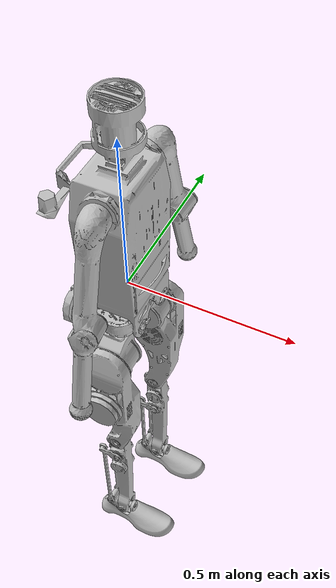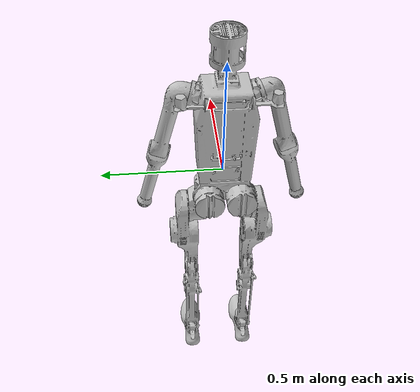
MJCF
<mujoco model="ultra">
  <compiler angle="radian" meshdir="meshes/"/>

  <asset>
    <mesh name="pelvis" content_type="model/stl" file="pelvis.STL"/>
    <mesh name="hip_roll_l_link" content_type="model/stl" file="hip_roll_l_link.STL"/>
    <mesh name="hip_yaw_l_link" content_type="model/stl" file="hip_yaw_l_link.STL"/>
    <mesh name="hip_pitch_l_link" content_type="model/stl" file="hip_pitch_l_link.STL"/>
    <mesh name="knee_pitch_l_link" content_type="model/stl" file="knee_pitch_l_link.STL"/>
    <mesh name="ankle_pitch_l_link" content_type="model/stl" file="ankle_pitch_l_link.STL"/>
    <mesh name="ankle_roll_l_link" content_type="model/stl" file="ankle_roll_l_link.STL"/>
    <mesh name="hip_roll_r_link" content_type="model/stl" file="hip_roll_r_link.STL"/>
    <mesh name="hip_yaw_r_link" content_type="model/stl" file="hip_yaw_r_link.STL"/>
    <mesh name="hip_pitch_r_link" content_type="model/stl" file="hip_pitch_r_link.STL"/>
    <mesh name="knee_pitch_r_link" content_type="model/stl" file="knee_pitch_r_link.STL"/>
    <mesh name="ankle_pitch_r_link" content_type="model/stl" file="ankle_pitch_r_link.STL"/>
    <mesh name="ankle_roll_r_link" content_type="model/stl" file="ankle_roll_r_link.STL"/>
    <mesh name="shoulder_pitch_l_link" content_type="model/stl" file="shoulder_pitch_l_link.STL"/>
    <mesh name="elbow_pitch_l_link" content_type="model/stl" file="elbow_pitch_l_link.STL"/>
    <mesh name="shoulder_pitch_r_link" content_type="model/stl" file="shoulder_pitch_r_link.STL"/>
    <mesh name="elbow_pitch_r_link" content_type="model/stl" file="elbow_pitch_r_link.STL"/>
  </asset>

  <worldbody>
    <body name="pelvis">
      <inertial pos="-0.027486 0.001029 0.142628" quat="0.998225 -0.00160131 0.0586252 0.0103724" mass="20.1608" diaginertia="0.926648 0.900537 0.164646"/>
      <joint name="root_joint" type="free"/>
      <geom type="mesh" contype="0" conaffinity="0" group="1" density="0" rgba="0.75294 0.75294 0.75294 1" mesh="pelvis"/>
      <geom name="pelvis_col" size="0.085" quat="0.707388 0 0.706825 0" group="3" rgba="0.752941 0.752941 0.752941 1"/>
      <geom name="torso_col" size="0.06" pos="0 0 0.56" group="3" rgba="0.752941 0.752941 0.752941 1"/>
      <site name="imu_link" pos="0 0 0" size="0.01"/>
      <body name="hip_roll_l_link" pos="0.00605 0.066 -0.08">
        <inertial pos="-0.002703 4.4e-05 -0.002143" quat="-0.0078991 0.717396 -0.00228795 0.696617" mass="1.44802" diaginertia="0.00234197 0.00191195 0.00132008"/>
        <joint name="hip_roll_l_joint" pos="0 0 0" axis="1 0 0" range="-0.785 1.57" actuatorfrcrange="-235 235"/>
        <geom type="mesh" contype="0" conaffinity="0" group="1" density="0" rgba="0.75294 0.75294 0.75294 1" mesh="hip_roll_l_link"/>
        <body name="hip_yaw_l_link" pos="0 0 -0.036">
          <inertial pos="-0.000486 0.036442 -0.07836" quat="0.71559 0.0496766 -0.0953516 0.690197" mass="2.99209" diaginertia="0.00766753 0.00682597 0.00494149"/>
          <joint name="hip_yaw_l_joint" pos="0 0 0" axis="0 0 1" range="-1.04 1.04" actuatorfrcrange="-150 150"/>
          <geom type="mesh" contype="0" conaffinity="0" group="1" density="0" rgba="0.75294 0.75294 0.75294 1" mesh="hip_yaw_l_link"/>
          <body name="hip_pitch_l_link" pos="0 0.0765 -0.09">
            <inertial pos="0.00429 0.02036 -0.145339" quat="0.745708 -0.0565347 0.00721245 0.663831" mass="5.577" diaginertia="0.0585338 0.0557137 0.0121085"/>
            <joint name="hip_pitch_l_joint" pos="0 0 0" axis="0 1 0" range="-2.355 1.65" actuatorfrcrange="-300 300"/>
            <geom type="mesh" contype="0" conaffinity="0" group="1" density="0" rgba="0.75294 0.75294 0.75294 1" mesh="hip_pitch_l_link"/>
            <geom name="thigh_l_col" size="0.05 0.075" pos="0 0 -0.15" type="capsule" group="3" rgba="0.752941 0.752941 0.752941 1"/>
            <body name="knee_pitch_l_link" pos="0 -0.0105 -0.4">
              <inertial pos="-0.005044 1.7e-05 -0.175819" quat="0.750457 0.00960806 0.0151074 0.660677" mass="3.0135" diaginertia="0.0513911 0.050981 0.00259093"/>
              <joint name="knee_pitch_l_joint" pos="0 0 0" axis="0 1 0" range="0 2.44" actuatorfrcrange="-300 300"/>
              <geom type="mesh" contype="0" conaffinity="0" group="1" density="0" rgba="0.75294 0.75294 0.75294 1" mesh="knee_pitch_l_link"/>
              <geom name="shank_l_col" size="0.03 0.09" pos="0 0 -0.23" type="capsule" group="3" rgba="0.752941 0.752941 0.752941 1"/>
              <body name="ankle_pitch_l_link" pos="0 -0.000125 -0.45">
                <inertial pos="-0.000207 0 0" quat="0 0.707107 0 0.707107" mass="0.152591" diaginertia="5.9e-05 3.3e-05 3.2e-05"/>
                <joint name="ankle_pitch_l_joint" pos="0 0 0" axis="0 1 0" range="-1.22 0.26" actuatorfrcrange="-100 100"/>
                <geom type="mesh" contype="0" conaffinity="0" group="1" density="0" rgba="0.75294 0.75294 0.75294 1" mesh="ankle_pitch_l_link"/>
                <body name="ankle_roll_l_link">
                  <inertial pos="0.030598 0.00539 -0.037938" quat="0.423321 0.566323 0.501033 0.499043" mass="0.844411" diaginertia="0.00516786 0.00506381 0.000845328"/>
                  <joint name="ankle_roll_l_joint" pos="0 0 0" axis="1 0 0" range="-0.174 0.174" actuatorfrcrange="-55 55"/>
                  <geom type="mesh" contype="0" conaffinity="0" group="1" density="0" rgba="0.75294 0.75294 0.75294 1" mesh="ankle_roll_l_link"/>
                  <geom name="foot_l_sole_col" size="0.11 0.0475 0.01" pos="0.017 0 -0.0604" type="box" group="3" rgba="0.752941 0.752941 0.752941 1"/>
                  <geom name="foot_l_toe_col" size="0.015 0.0475 0.01" pos="0.1385 0 -0.057" quat="0.992198 0 -0.124675 0" type="box" group="3" rgba="0.752941 0.752941 0.752941 1"/>
                  <geom name="foot_l_tip_col" size="0.015 0.0475 0.01" pos="0.1625 0 -0.0467" quat="0.962425 0 -0.271547 0" type="box" group="3" rgba="0.752941 0.752941 0.752941 1"/>
                </body>
              </body>
            </body>
          </body>
        </body>
      </body>
      <body name="hip_roll_r_link" pos="0.00605 -0.066 -0.08">
        <inertial pos="-0.002703 -4.4e-05 -0.002143" quat="0.0078991 0.717396 0.00228795 0.696617" mass="1.44802" diaginertia="0.00234197 0.00191195 0.00132008"/>
        <joint name="hip_roll_r_joint" pos="0 0 0" axis="1 0 0" range="-1.57 0.785" actuatorfrcrange="-235 235"/>
        <geom type="mesh" contype="0" conaffinity="0" group="1" density="0" rgba="0.75294 0.75294 0.75294 1" mesh="hip_roll_r_link"/>
        <body name="hip_yaw_r_link" pos="0 0 -0.036">
          <inertial pos="-0.000486 -0.036442 -0.07836" quat="0.690197 -0.0953516 0.0496766 0.71559" mass="2.99209" diaginertia="0.00766753 0.00682597 0.00494149"/>
          <joint name="hip_yaw_r_joint" pos="0 0 0" axis="0 0 1" range="-1.04 1.04" actuatorfrcrange="-150 150"/>
          <geom type="mesh" contype="0" conaffinity="0" group="1" density="0" rgba="0.75294 0.75294 0.75294 1" mesh="hip_yaw_r_link"/>
          <body name="hip_pitch_r_link" pos="0 -0.0765 -0.09">
            <inertial pos="0.00429 -0.02036 -0.145339" quat="0.663831 0.00721245 -0.0565347 0.745708" mass="5.577" diaginertia="0.0585338 0.0557137 0.0121085"/>
            <joint name="hip_pitch_r_joint" pos="0 0 0" axis="0 1 0" range="-2.355 1.65" actuatorfrcrange="-300 300"/>
            <geom type="mesh" contype="0" conaffinity="0" group="1" density="0" rgba="0.75294 0.75294 0.75294 1" mesh="hip_pitch_r_link"/>
            <geom name="thigh_r_col" size="0.05 0.075" pos="0 0 -0.15" type="capsule" group="3" rgba="0.752941 0.752941 0.752941 1"/>
            <body name="knee_pitch_r_link" pos="0 0.010625 -0.4">
              <inertial pos="-0.005044 -1.7e-05 -0.175819" quat="0.660677 0.0151074 0.00960806 0.750457" mass="3.0135" diaginertia="0.0513911 0.050981 0.00259093"/>
              <joint name="knee_pitch_r_joint" pos="0 0 0" axis="0 1 0" range="0 2.44" actuatorfrcrange="-300 300"/>
              <geom type="mesh" contype="0" conaffinity="0" group="1" density="0" rgba="0.75294 0.75294 0.75294 1" mesh="knee_pitch_r_link"/>
              <geom name="shank_r_col" size="0.03 0.09" pos="0 0 -0.23" type="capsule" group="3" rgba="0.752941 0.752941 0.752941 1"/>
              <body name="ankle_pitch_r_link" pos="0 0 -0.45">
                <inertial pos="-0.000207 0 0" quat="0 0.707107 0 0.707107" mass="0.152591" diaginertia="5.9e-05 3.3e-05 3.2e-05"/>
                <joint name="ankle_pitch_r_joint" pos="0 0 0" axis="0 1 0" range="-1.22 0.26" actuatorfrcrange="-100 100"/>
                <geom type="mesh" contype="0" conaffinity="0" group="1" density="0" rgba="0.75294 0.75294 0.75294 1" mesh="ankle_pitch_r_link"/>
                <body name="ankle_roll_r_link">
                  <inertial pos="0.030598 -0.00539 -0.037938" quat="0.499043 0.501033 0.566323 0.423321" mass="0.844411" diaginertia="0.00516786 0.00506381 0.000845328"/>
                  <joint name="ankle_roll_r_joint" pos="0 0 0" axis="1 0 0" range="-0.174 0.174" actuatorfrcrange="-55 55"/>
                  <geom type="mesh" contype="0" conaffinity="0" group="1" density="0" rgba="0.75294 0.75294 0.75294 1" mesh="ankle_roll_r_link"/>
                  <geom name="foot_r_sole_col" size="0.11 0.0475 0.01" pos="0.017 0 -0.0604" type="box" group="3" rgba="0.752941 0.752941 0.752941 1"/>
                  <geom name="foot_r_toe_col" size="0.015 0.0475 0.01" pos="0.1385 0 -0.057" quat="0.992198 0 -0.124675 0" type="box" group="3" rgba="0.752941 0.752941 0.752941 1"/>
                  <geom name="foot_r_tip_col" size="0.015 0.0475 0.01" pos="0.1625 0 -0.0467" quat="0.962425 0 -0.271547 0" type="box" group="3" rgba="0.752941 0.752941 0.752941 1"/>
                </body>
              </body>
            </body>
          </body>
        </body>
      </body>
      <body name="shoulder_pitch_l_link" pos="0.011036 0.13519 0.36827" quat="0.987672 0.130031 0.0113762 -0.0864102">
        <inertial pos="0.013304 0.060804 -0.233323" quat="0.994503 0.0650333 -0.0318387 -0.0756355" mass="0.923" diaginertia="0.0119729 0.0119023 0.000682733"/>
        <joint name="shoulder_pitch_l_joint" pos="0 0 0" axis="0 1 0" range="-2.96 1.22" actuatorfrcrange="-55 55"/>
        <geom type="mesh" contype="0" conaffinity="0" group="1" density="0" rgba="0.75294 0.75294 0.75294 1" mesh="shoulder_pitch_l_link"/>
        <geom name="upperarm_l_col" size="0.03 0.045" pos="0 0.051501 -0.12" type="capsule" group="3" rgba="0.752941 0.752941 0.752941 1"/>
        <body name="elbow_pitch_l_link" pos="0.02 0.051501 -0.3" quat="0.99997 0 -0.00772042 0">
          <inertial pos="-0.018333 -0.000692 -0.135742" quat="0.999807 0.00421721 0.0109906 0.0157177" mass="0.269" diaginertia="0.00314846 0.00310114 0.000252399"/>
          <joint name="elbow_pitch_l_joint" pos="0 0 0" axis="0 1 0" range="-2.61 0.26" actuatorfrcrange="-55 55"/>
          <geom type="mesh" contype="0" conaffinity="0" group="1" density="0" rgba="0.75294 0.75294 0.75294 1" mesh="elbow_pitch_l_link"/>
          <geom name="forearm_l_col" size="0.02 0.05" pos="-0.02 0 -0.15" type="capsule" group="3" rgba="0.752941 0.752941 0.752941 1"/>
        </body>
      </body>
      <body name="shoulder_pitch_r_link" pos="0.011036 -0.13519 0.36827" quat="0.987672 -0.130031 0.0113762 0.0864102">
        <inertial pos="0.013304 -0.060804 -0.233323" quat="0.994503 -0.0650333 -0.0318387 0.0756355" mass="0.923" diaginertia="0.0119729 0.0119023 0.000682733"/>
        <joint name="shoulder_pitch_r_joint" pos="0 0 0" axis="0 1 0" range="-2.96 1.22" actuatorfrcrange="-55 55"/>
        <geom type="mesh" contype="0" conaffinity="0" group="1" density="0" rgba="0.75294 0.75294 0.75294 1" mesh="shoulder_pitch_r_link"/>
        <geom name="upperarm_r_col" size="0.03 0.045" pos="0 -0.051501 -0.12" type="capsule" group="3" rgba="0.752941 0.752941 0.752941 1"/>
        <body name="elbow_pitch_r_link" pos="0.02 -0.051501 -0.3" quat="0.99997 0 -0.00772042 0">
          <inertial pos="-0.018333 0.000692 -0.135742" quat="0.999807 -0.00421721 0.0109906 -0.0157177" mass="0.269" diaginertia="0.00314846 0.00310114 0.000252399"/>
          <joint name="elbow_pitch_r_joint" pos="0 0 0" axis="0 1 0" range="-2.61 0.26" actuatorfrcrange="-55 55"/>
          <geom type="mesh" contype="0" conaffinity="0" group="1" density="0" rgba="0.75294 0.75294 0.75294 1" mesh="elbow_pitch_r_link"/>
          <geom name="forearm_r_col" size="0.02 0.05" pos="-0.02 0 -0.15" type="capsule" group="3" rgba="0.752941 0.752941 0.752941 1"/>
        </body>
      </body>
    </body>
  </worldbody>
</mujoco>
